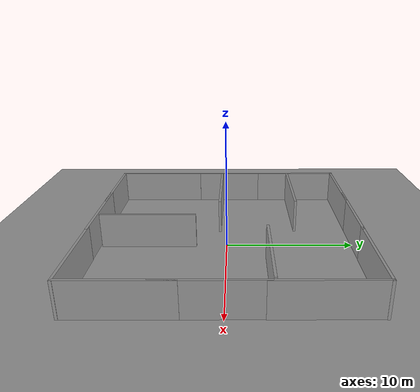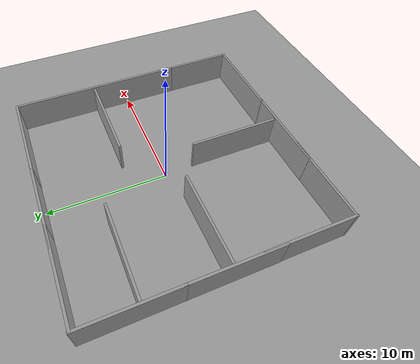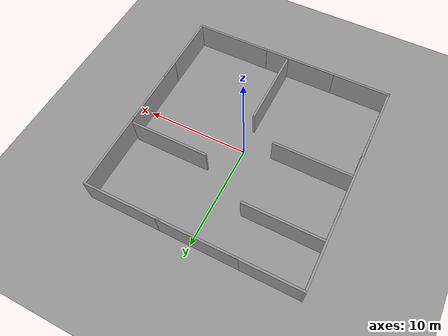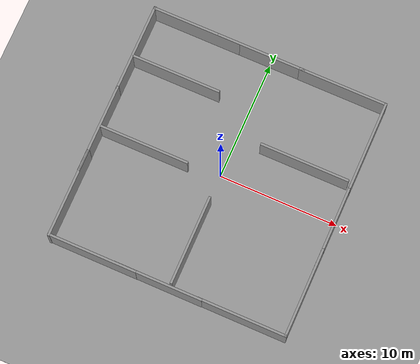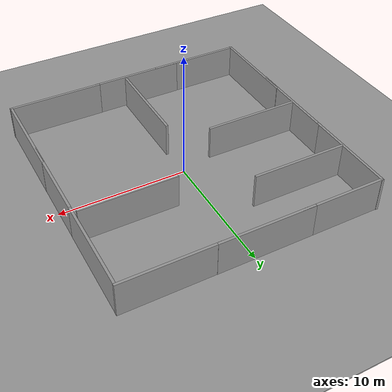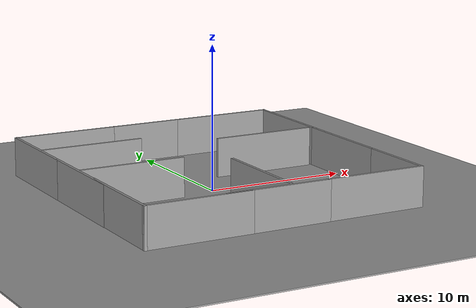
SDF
<sdf version="1.7">
 <world name="default">
  <light name="sun" type="directional">
   <pose>0 0 10 0 -0 0</pose>
   <diffuse>0.8 0.8 0.8 1</diffuse>
   <specular>0.2 0.2 0.2 1</specular>
   <attenuation>
    <range>1000</range>
    <constant>0.9</constant>
    <linear>0.01</linear>
    <quadratic>0.001</quadratic>
   </attenuation>
   <direction>-0.5 0.1 -0.9</direction>
   <spot><inner_angle>0</inner_angle><outer_angle>0</outer_angle><falloff>0</falloff></spot>
  </light>
  <model name="ground_plane">
   <static>1</static>
   <link name="link">
    <collision name="collision">
     <geometry><plane><normal>0 0 1</normal><size>100 100</size></plane></geometry>
     <surface>
      <contact><collide_bitmask>65535</collide_bitmask></contact>
      <friction><ode><mu>100</mu><mu2>50</mu2></ode></friction>
     </surface>
    </collision>
    <visual name="visual">
     <cast_shadows>0</cast_shadows>
     <geometry><plane><normal>0 0 1</normal><size>100 100</size></plane></geometry>
     <material>
      <script><uri>file://media/materials/scripts/gazebo.material</uri><name>Gazebo/Grey</name></script>
     </material>
    </visual>
   </link>
  </model>
  <gravity>0 0 -9.8</gravity>
  <magnetic_field>6e-06 2.3e-05 -4.2e-05</magnetic_field>
  <atmosphere type="adiabatic"/>
  <physics type="ode">
   <max_step_size>0.001</max_step_size>
   <real_time_factor>1</real_time_factor>
   <real_time_update_rate>1000</real_time_update_rate>
  </physics>
  <scene><ambient>0.4 0.4 0.4 1</ambient><background>0.7 0.7 0.7 1</background><shadows>1</shadows></scene>
  <spherical_coordinates>
   <surface_model>EARTH_WGS84</surface_model>
   <latitude_deg>0</latitude_deg>
   <longitude_deg>0</longitude_deg>
   <elevation>0</elevation>
   <heading_deg>0</heading_deg>
  </spherical_coordinates>
  <model name="grey_wall">
   <static>1</static>
   <link name="link">
    <pose>0 0 1.4 0 -0 0</pose>
    <collision name="collision"><geometry><box><size>7.5 0.2 2.8</size></box></geometry></collision>
    <visual name="visual">
     <cast_shadows>0</cast_shadows>
     <geometry><box><size>7.5 0.2 2.8</size></box></geometry>
     <material>
      <script>
       <uri>model://grey_wall/materials/scripts</uri>
       <uri>model://grey_wall/materials/textures</uri>
       <name>vrc/grey_wall</name>
      </script>
     </material>
    </visual>
   </link>
   <pose>6.21166 9.95978 0 0 -0 0</pose>
  </model>
  <model name="grey_wall_0">
   <static>1</static>
   <link name="link">
    <pose>0 0 1.4 0 -0 0</pose>
    <collision name="collision"><geometry><box><size>7.5 0.2 2.8</size></box></geometry></collision>
    <visual name="visual">
     <cast_shadows>0</cast_shadows>
     <geometry><box><size>7.5 0.2 2.8</size></box></geometry>
     <material>
      <script>
       <uri>model://grey_wall/materials/scripts</uri>
       <uri>model://grey_wall/materials/textures</uri>
       <name>vrc/grey_wall</name>
      </script>
     </material>
    </visual>
   </link>
   <pose>-0.831001 9.96998 0 0 -0 0</pose>
  </model>
  <model name="grey_wall_1">
   <static>1</static>
   <link name="link">
    <pose>0 0 1.4 0 -0 0</pose>
    <collision name="collision"><geometry><box><size>7.5 0.2 2.8</size></box></geometry></collision>
    <visual name="visual">
     <cast_shadows>0</cast_shadows>
     <geometry><box><size>7.5 0.2 2.8</size></box></geometry>
     <material>
      <script>
       <uri>model://grey_wall/materials/scripts</uri>
       <uri>model://grey_wall/materials/textures</uri>
       <name>vrc/grey_wall</name>
      </script>
     </material>
    </visual>
   </link>
   <pose>-6.41035 9.96829 0 0 -0 0</pose>
  </model>
  <model name="grey_wall_2">
   <static>1</static>
   <link name="link">
    <pose>0 0 1.4 0 -0 0</pose>
    <collision name="collision"><geometry><box><size>7.5 0.2 2.8</size></box></geometry></collision>
    <visual name="visual">
     <cast_shadows>0</cast_shadows>
     <geometry><box><size>7.5 0.2 2.8</size></box></geometry>
     <material>
      <script>
       <uri>model://grey_wall/materials/scripts</uri>
       <uri>model://grey_wall/materials/textures</uri>
       <name>vrc/grey_wall</name>
      </script>
     </material>
    </visual>
   </link>
   <pose>6.21231 -10.1182 0 0 -0 0</pose>
  </model>
  <model name="grey_wall_3">
   <static>1</static>
   <link name="link">
    <pose>0 0 1.4 0 -0 0</pose>
    <collision name="collision"><geometry><box><size>7.5 0.2 2.8</size></box></geometry></collision>
    <visual name="visual">
     <cast_shadows>0</cast_shadows>
     <geometry><box><size>7.5 0.2 2.8</size></box></geometry>
     <material>
      <script>
       <uri>model://grey_wall/materials/scripts</uri>
       <uri>model://grey_wall/materials/textures</uri>
       <name>vrc/grey_wall</name>
      </script>
     </material>
    </visual>
   </link>
   <pose>-0.880008 -10.1412 0 0 -0 0</pose>
  </model>
  <model name="grey_wall_4">
   <static>1</static>
   <link name="link">
    <pose>0 0 1.4 0 -0 0</pose>
    <collision name="collision"><geometry><box><size>7.5 0.2 2.8</size></box></geometry></collision>
    <visual name="visual">
     <cast_shadows>0</cast_shadows>
     <geometry><box><size>7.5 0.2 2.8</size></box></geometry>
     <material>
      <script>
       <uri>model://grey_wall/materials/scripts</uri>
       <uri>model://grey_wall/materials/textures</uri>
       <name>vrc/grey_wall</name>
      </script>
     </material>
    </visual>
   </link>
   <pose>-6.42854 -10.1572 0 0 -0 0</pose>
  </model>
  <model name="grey_wall_5">
   <static>1</static>
   <link name="link">
    <pose>0 0 1.4 0 -0 0</pose>
    <collision name="collision"><geometry><box><size>7.5 0.2 2.8</size></box></geometry></collision>
    <visual name="visual">
     <cast_shadows>0</cast_shadows>
     <geometry><box><size>7.5 0.2 2.8</size></box></geometry>
     <material>
      <script>
       <uri>model://grey_wall/materials/scripts</uri>
       <uri>model://grey_wall/materials/textures</uri>
       <name>vrc/grey_wall</name>
      </script>
     </material>
    </visual>
   </link>
   <pose>-10.1032 6.35154 0 0 -0 1.5707</pose>
  </model>
  <model name="grey_wall_6">
   <static>1</static>
   <link name="link">
    <pose>0 0 1.4 0 -0 0</pose>
    <collision name="collision"><geometry><box><size>7.5 0.2 2.8</size></box></geometry></collision>
    <visual name="visual">
     <cast_shadows>0</cast_shadows>
     <geometry><box><size>7.5 0.2 2.8</size></box></geometry>
     <material>
      <script>
       <uri>model://grey_wall/materials/scripts</uri>
       <uri>model://grey_wall/materials/textures</uri>
       <name>vrc/grey_wall</name>
      </script>
     </material>
    </visual>
   </link>
   <pose>9.85241 6.30032 0 0 -0 1.5707</pose>
  </model>
  <model name="grey_wall_7">
   <static>1</static>
   <link name="link">
    <pose>0 0 1.4 0 -0 0</pose>
    <collision name="collision"><geometry><box><size>7.5 0.2 2.8</size></box></geometry></collision>
    <visual name="visual">
     <cast_shadows>0</cast_shadows>
     <geometry><box><size>7.5 0.2 2.8</size></box></geometry>
     <material>
      <script>
       <uri>model://grey_wall/materials/scripts</uri>
       <uri>model://grey_wall/materials/textures</uri>
       <name>vrc/grey_wall</name>
      </script>
     </material>
    </visual>
   </link>
   <pose>9.84374 -6.44322 0 0 -0 1.5707</pose>
  </model>
  <model name="grey_wall_8">
   <static>1</static>
   <link name="link">
    <pose>0 0 1.4 0 -0 0</pose>
    <collision name="collision"><geometry><box><size>7.5 0.2 2.8</size></box></geometry></collision>
    <visual name="visual">
     <cast_shadows>0</cast_shadows>
     <geometry><box><size>7.5 0.2 2.8</size></box></geometry>
     <material>
      <script>
       <uri>model://grey_wall/materials/scripts</uri>
       <uri>model://grey_wall/materials/textures</uri>
       <name>vrc/grey_wall</name>
      </script>
     </material>
    </visual>
   </link>
   <pose>-10.1022 -0.884989 0 0 -0 1.5707</pose>
  </model>
  <model name="grey_wall_9">
   <static>1</static>
   <link name="link">
    <pose>0 0 1.4 0 -0 0</pose>
    <collision name="collision"><geometry><box><size>7.5 0.2 2.8</size></box></geometry></collision>
    <visual name="visual">
     <cast_shadows>0</cast_shadows>
     <geometry><box><size>7.5 0.2 2.8</size></box></geometry>
     <material>
      <script>
       <uri>model://grey_wall/materials/scripts</uri>
       <uri>model://grey_wall/materials/textures</uri>
       <name>vrc/grey_wall</name>
      </script>
     </material>
    </visual>
   </link>
   <pose>9.84028 -0.795496 0 0 -0 1.5707</pose>
  </model>
  <model name="grey_wall_10">
   <static>1</static>
   <link name="link">
    <pose>0 0 1.4 0 -0 0</pose>
    <collision name="collision"><geometry><box><size>7.5 0.2 2.8</size></box></geometry></collision>
    <visual name="visual">
     <cast_shadows>0</cast_shadows>
     <geometry><box><size>7.5 0.2 2.8</size></box></geometry>
     <material>
      <script>
       <uri>model://grey_wall/materials/scripts</uri>
       <uri>model://grey_wall/materials/textures</uri>
       <name>vrc/grey_wall</name>
      </script>
     </material>
    </visual>
   </link>
   <pose>-10.0717 -6.53675 0 0 -0 1.5707</pose>
  </model>
  <model name="grey_wall_11">
   <static>1</static>
   <link name="link">
    <pose>0 0 1.4 0 -0 0</pose>
    <collision name="collision"><geometry><box><size>7.5 0.2 2.8</size></box></geometry></collision>
    <visual name="visual">
     <cast_shadows>0</cast_shadows>
     <geometry><box><size>7.5 0.2 2.8</size></box></geometry>
     <material>
      <script>
       <uri>model://grey_wall/materials/scripts</uri>
       <uri>model://grey_wall/materials/textures</uri>
       <name>vrc/grey_wall</name>
      </script>
     </material>
    </visual>
   </link>
   <pose>5.8282 3.07375 0 0 -0 0</pose>
  </model>
  <model name="grey_wall_12">
   <static>1</static>
   <link name="link">
    <pose>0 0 1.4 0 -0 0</pose>
    <collision name="collision"><geometry><box><size>7.5 0.2 2.8</size></box></geometry></collision>
    <visual name="visual">
     <cast_shadows>0</cast_shadows>
     <geometry><box><size>7.5 0.2 2.8</size></box></geometry>
     <material>
      <script>
       <uri>model://grey_wall/materials/scripts</uri>
       <uri>model://grey_wall/materials/textures</uri>
       <name>vrc/grey_wall</name>
      </script>
     </material>
    </visual>
   </link>
   <pose>-6.32648 5.66454 0 0 -0 0</pose>
  </model>
  <model name="grey_wall_13">
   <static>1</static>
   <link name="link">
    <pose>0 0 1.4 0 -0 0</pose>
    <collision name="collision"><geometry><box><size>7.5 0.2 2.8</size></box></geometry></collision>
    <visual name="visual">
     <cast_shadows>0</cast_shadows>
     <geometry><box><size>7.5 0.2 2.8</size></box></geometry>
     <material>
      <script>
       <uri>model://grey_wall/materials/scripts</uri>
       <uri>model://grey_wall/materials/textures</uri>
       <name>vrc/grey_wall</name>
      </script>
     </material>
    </visual>
   </link>
   <pose>-6.26868 -0.629367 0 0 -0 0</pose>
  </model>
  <model name="grey_wall_14">
   <static>1</static>
   <link name="link">
    <pose>0 0 1.4 0 -0 0</pose>
    <collision name="collision"><geometry><box><size>7.5 0.2 2.8</size></box></geometry></collision>
    <visual name="visual">
     <cast_shadows>0</cast_shadows>
     <geometry><box><size>7.5 0.2 2.8</size></box></geometry>
     <material>
      <script>
       <uri>model://grey_wall/materials/scripts</uri>
       <uri>model://grey_wall/materials/textures</uri>
       <name>vrc/grey_wall</name>
      </script>
     </material>
    </visual>
   </link>
   <pose>0.161375 -6.16643 0 0 -0 1.5707</pose>
  </model>
  <model name="ground_plane_0">
   <static>1</static>
   <link name="link">
    <collision name="collision">
     <geometry><plane><normal>0 0 1</normal><size>100 100</size></plane></geometry>
     <surface><friction><ode><mu>100</mu><mu2>50</mu2></ode></friction></surface>
    </collision>
    <visual name="visual">
     <cast_shadows>0</cast_shadows>
     <geometry><plane><normal>0 0 1</normal><size>100 100</size></plane></geometry>
     <material>
      <script><uri>file://media/materials/scripts/gazebo.material</uri><name>Gazebo/Grey</name></script>
     </material>
    </visual>
   </link>
   <pose>-0.266609 0.63903 0 0 -0 0</pose>
  </model>
 </world>
</sdf>
